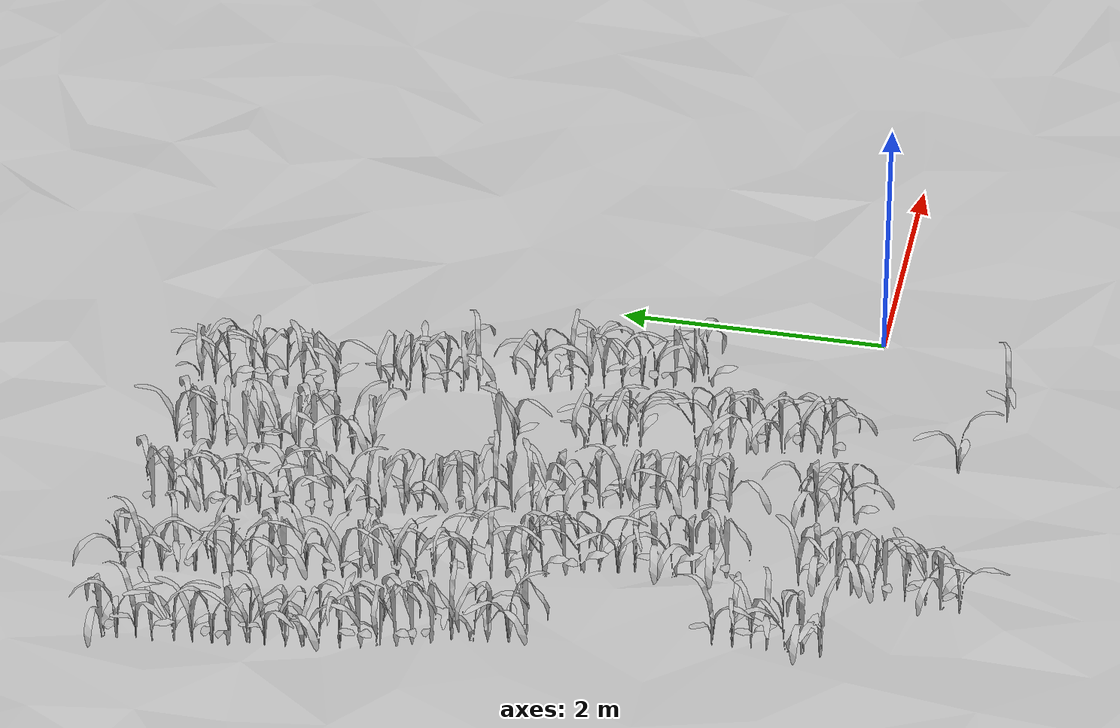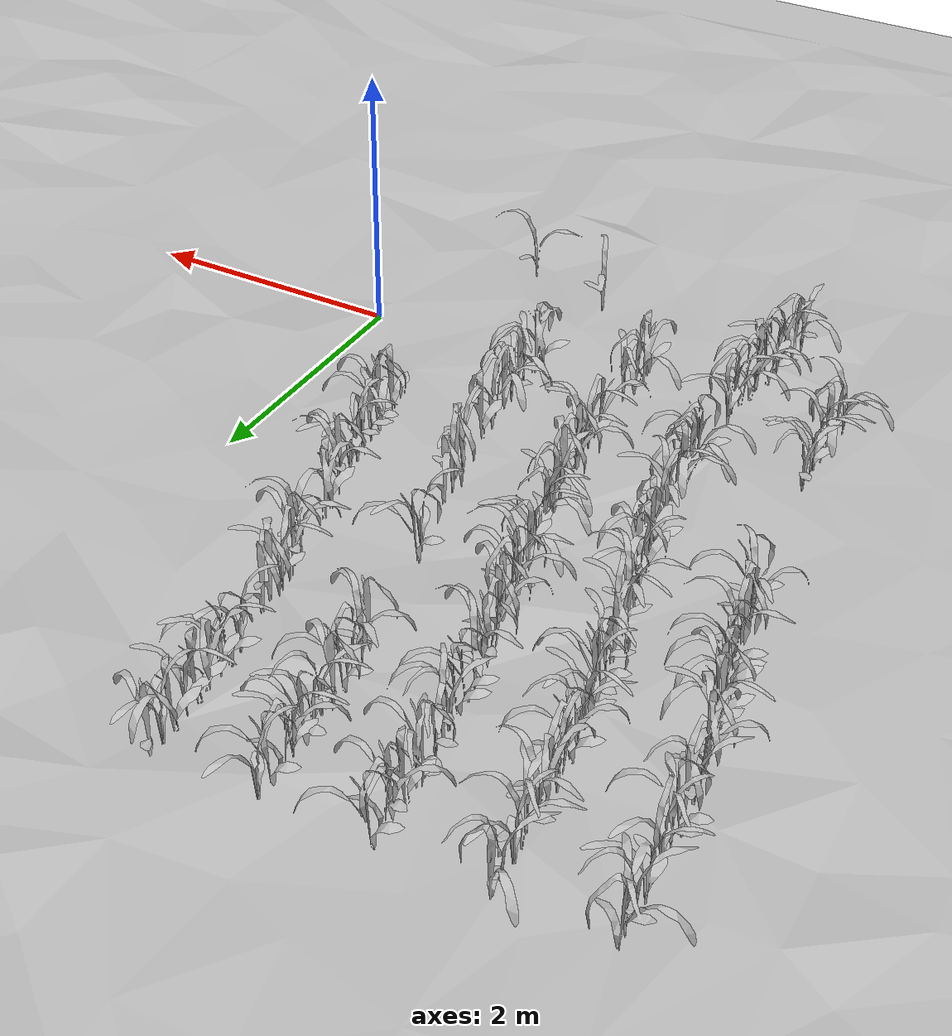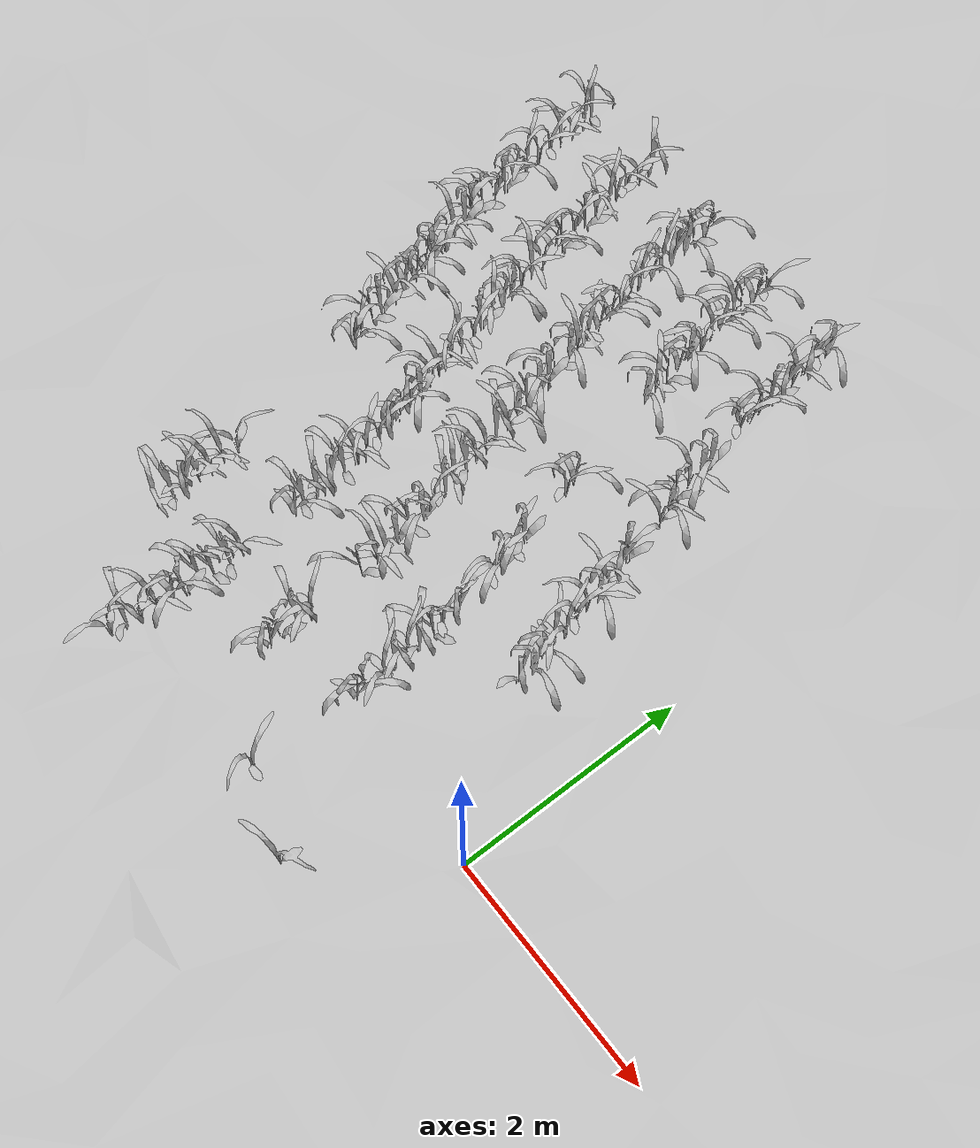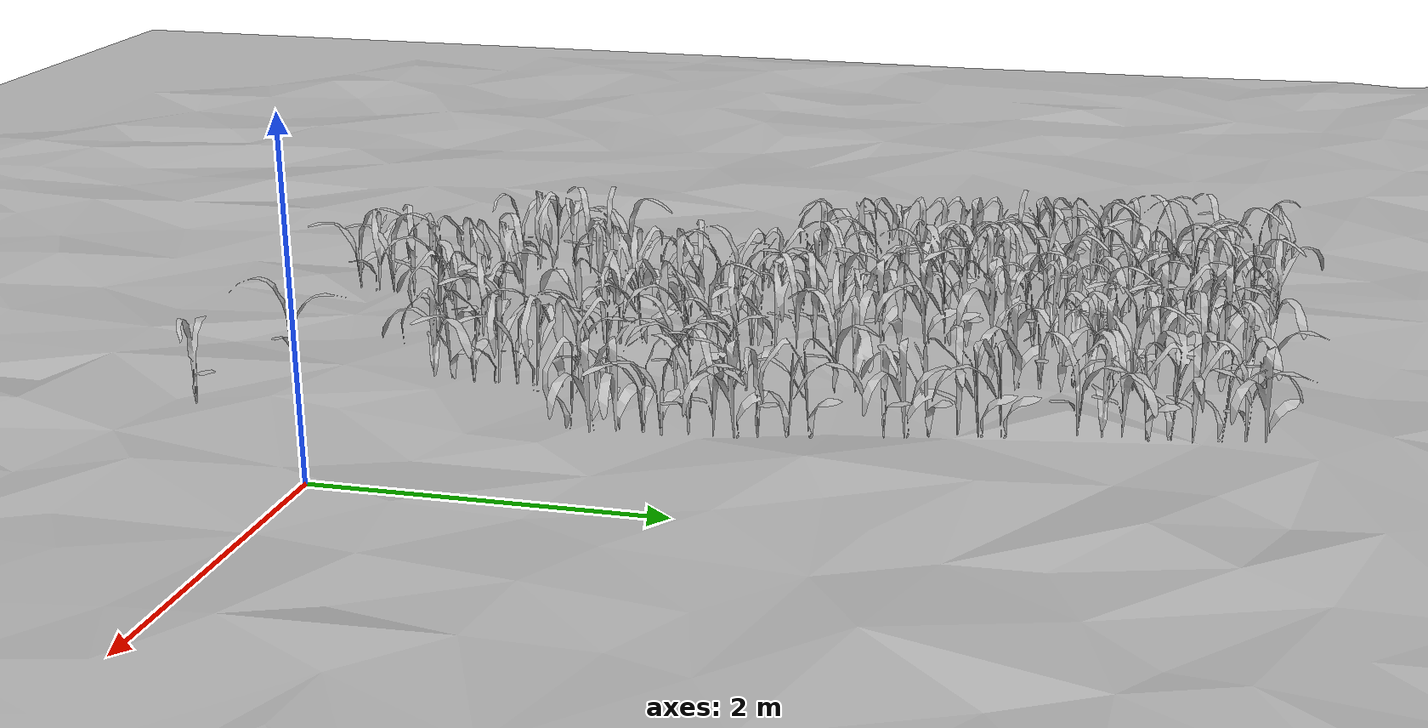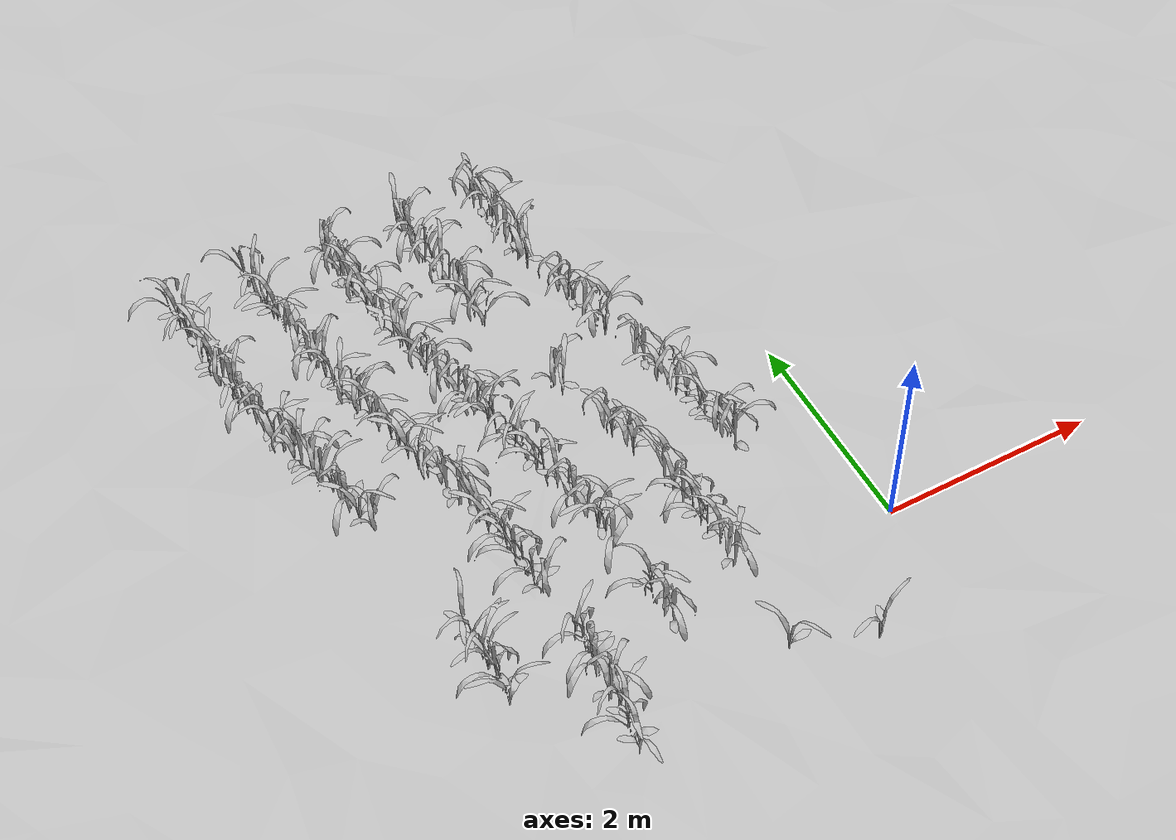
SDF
<sdf version="1.7">
 <world name="default">
  <model name="ground_plane">
   <static>1</static>
   <link name="link">
    <collision name="collision">
     <geometry><plane><normal>0 0 1</normal><size>100 100</size></plane></geometry>
     <surface>
      <contact><collide_bitmask>65535</collide_bitmask></contact>
      <friction><ode><mu>100</mu><mu2>50</mu2></ode></friction>
     </surface>
    </collision>
    <visual name="visual">
     <cast_shadows>0</cast_shadows>
     <geometry><plane><normal>0 0 1</normal><size>100 100</size></plane></geometry>
     <material>
      <script><uri>file://media/materials/scripts/gazebo.material</uri><name>Gazebo/Grey</name></script>
     </material>
    </visual>
   </link>
  </model>
  <model name="custom_terrain">
   <static>1</static>
   <link name="link">
    <collision name="collision">
     <geometry><mesh><uri>model://custom_terrain/meshes/terrain.stl</uri></mesh></geometry>
    </collision>
    <visual name="visual">
     <geometry><mesh><uri>model://custom_terrain/meshes/terrain.stl</uri></mesh></geometry>
     <material>
      <script>
       <uri>model://custom_terrain/materials/scripts</uri>
       <uri>model://custom_terrain/materials/textures</uri>
       <name>custom_terrain/terrain</name>
      </script>
     </material>
    </visual>
   </link>
   <pose>-1.53507 2.74629 0 0 -0 0</pose>
  </model>
  <include>
   <uri>model://maize_02</uri>
   <pose>-3.7567924410672364 -0.1360610948359063 0.0 0.0 0.0 5.036925746394316</pose>
   <name>maize_02_0026</name>
   <static>true</static>
  </include>
  <include>
   <uri>model://maize_01</uri>
   <pose>-3.7405225793795362 0.0021068335730533303 0.0 0.0 0.0 3.9331583203356963</pose>
   <name>maize_01_0027</name>
   <static>true</static>
  </include>
  <include>
   <uri>model://maize_01</uri>
   <pose>-3.734272335417399 0.11505640092894312 0.0 0.0 0.0 2.792430456240916</pose>
   <name>maize_01_0028</name>
   <static>true</static>
  </include>
  <include>
   <uri>model://maize_02</uri>
   <pose>-3.7499746450431752 0.2511029943738589 0.0 0.0 0.0 5.494040579656882</pose>
   <name>maize_02_0029</name>
   <static>true</static>
  </include>
  <include>
   <uri>model://maize_02</uri>
   <pose>-3.74065491064694 0.361452030578065 0.0 0.0 0.0 2.830029925927139</pose>
   <name>maize_02_0030</name>
   <static>true</static>
  </include>
  <include>
   <uri>model://maize_02</uri>
   <pose>-3.76301845584317 0.492875207533453 0.0 0.0 0.0 2.2645407160759623</pose>
   <name>maize_02_0031</name>
   <static>true</static>
  </include>
  <include>
   <uri>model://maize_02</uri>
   <pose>-3.7751229652743112 0.6411643814478026 0.0 0.0 0.0 0.22143477009293225</pose>
   <name>maize_02_0032</name>
   <static>true</static>
  </include>
  <include>
   <uri>model://maize_01</uri>
   <pose>-3.9689191932620034 1.948793514154321 0.0 0.0 0.0 1.3110168050859692</pose>
   <name>maize_01_0033</name>
   <static>true</static>
  </include>
  <include>
   <uri>model://maize_02</uri>
   <pose>-4.031450635249578 2.0651638195042916 0.0 0.0 0.0 4.447643577574803</pose>
   <name>maize_02_0034</name>
   <static>true</static>
  </include>
  <include>
   <uri>model://maize_01</uri>
   <pose>-4.0657125648753185 2.2131037308992263 0.0 0.0 0.0 4.838461899881053</pose>
   <name>maize_01_0035</name>
   <static>true</static>
  </include>
  <include>
   <uri>model://maize_01</uri>
   <pose>-4.087466114800542 2.3178041021859657 0.0 0.0 0.0 5.884264843366015</pose>
   <name>maize_01_0036</name>
   <static>true</static>
  </include>
  <include>
   <uri>model://maize_02</uri>
   <pose>-4.097641832399591 2.4675763133303596 0.0 0.0 0.0 5.382963341448509</pose>
   <name>maize_02_0037</name>
   <static>true</static>
  </include>
  <include>
   <uri>model://maize_01</uri>
   <pose>-4.144928749687069 2.5944795658852375 0.0 0.0 0.0 1.2183981037458342</pose>
   <name>maize_01_0038</name>
   <static>true</static>
  </include>
  <include>
   <uri>model://maize_01</uri>
   <pose>-4.177460835608233 2.7311171453789087 0.0 0.0 0.0 1.5094114498369817</pose>
   <name>maize_01_0039</name>
   <static>true</static>
  </include>
  <include>
   <uri>model://maize_01</uri>
   <pose>-4.214135521841443 2.842870683567155 0.0 0.0 0.0 1.8825813434135141</pose>
   <name>maize_01_0040</name>
   <static>true</static>
  </include>
  <include>
   <uri>model://maize_01</uri>
   <pose>-4.238701169505013 2.962295858000967 0.0 0.0 0.0 0.10517859354702118</pose>
   <name>maize_01_0041</name>
   <static>true</static>
  </include>
  <include>
   <uri>model://maize_01</uri>
   <pose>-4.2667152205244845 3.0916422492018527 0.0 0.0 0.0 1.8219417054282723</pose>
   <name>maize_01_0042</name>
   <static>true</static>
  </include>
  <include>
   <uri>model://maize_02</uri>
   <pose>-4.305227859399909 3.2338050200868076 0.0 0.0 0.0 2.085394830851667</pose>
   <name>maize_02_0043</name>
   <static>true</static>
  </include>
  <include>
   <uri>model://maize_01</uri>
   <pose>-4.344530673343572 3.387040852261395 0.0 0.0 0.0 6.0183641944824</pose>
   <name>maize_01_0044</name>
   <static>true</static>
  </include>
  <include>
   <uri>model://maize_01</uri>
   <pose>-4.366849776595926 3.489345505076495 0.0 0.0 0.0 5.494714545619155</pose>
   <name>maize_01_0045</name>
   <static>true</static>
  </include>
  <include>
   <uri>model://maize_01</uri>
   <pose>-4.388871433206439 3.6170380294359696 0.0 0.0 0.0 4.744487114132191</pose>
   <name>maize_01_0046</name>
   <static>true</static>
  </include>
  <include>
   <uri>model://maize_02</uri>
   <pose>-4.420353506975653 3.759798702129333 0.0 0.0 0.0 6.216815171311874</pose>
   <name>maize_02_0047</name>
   <static>true</static>
  </include>
  <include>
   <uri>model://maize_01</uri>
   <pose>-4.417220022422768 3.8744642306572232 0.0 0.0 0.0 5.586565114657938</pose>
   <name>maize_01_0048</name>
   <static>true</static>
  </include>
  <include>
   <uri>model://maize_01</uri>
   <pose>-4.451056796519463 4.006122477797791 0.0 0.0 0.0 1.0842739824286645</pose>
   <name>maize_01_0049</name>
   <static>true</static>
  </include>
  <include>
   <uri>model://maize_02</uri>
   <pose>-4.460042847095113 4.133810177064627 0.0 0.0 0.0 1.1842065806169186</pose>
   <name>maize_02_0050</name>
   <static>true</static>
  </include>
  <include>
   <uri>model://maize_02</uri>
   <pose>-4.466753579862388 4.275343426863375 0.0 0.0 0.0 3.236226772308393</pose>
   <name>maize_02_0051</name>
   <static>true</static>
  </include>
  <include>
   <uri>model://maize_02</uri>
   <pose>-4.479235922992863 4.408182305770899 0.0 0.0 0.0 3.8772745379880775</pose>
   <name>maize_02_0052</name>
   <static>true</static>
  </include>
  <include>
   <uri>model://maize_02</uri>
   <pose>-4.510687752517814 4.557649813521857 0.0 0.0 0.0 2.6763407708204254</pose>
   <name>maize_02_0053</name>
   <static>true</static>
  </include>
  <include>
   <uri>model://maize_02</uri>
   <pose>-4.50436325396495 4.682885742345909 0.0 0.0 0.0 6.198014532117304</pose>
   <name>maize_02_0054</name>
   <static>true</static>
  </include>
  <include>
   <uri>model://maize_02</uri>
   <pose>-4.522193680693597 4.818780638659395 0.0 0.0 0.0 1.1396226375032006</pose>
   <name>maize_02_0055</name>
   <static>true</static>
  </include>
  <include>
   <uri>model://maize_01</uri>
   <pose>-4.533056927243937 4.925004162875749 0.0 0.0 0.0 3.9665080409533644</pose>
   <name>maize_01_0056</name>
   <static>true</static>
  </include>
  <include>
   <uri>model://maize_02</uri>
   <pose>-3.0718790728734855 -1.033231703678202 0.0 0.0 0.0 0.6249073387797515</pose>
   <name>maize_02_0078</name>
   <static>true</static>
  </include>
  <include>
   <uri>model://maize_01</uri>
   <pose>-3.0536317117254725 -0.8957734762291402 0.0 0.0 0.0 3.648441963719134</pose>
   <name>maize_01_0079</name>
   <static>true</static>
  </include>
  <include>
   <uri>model://maize_02</uri>
   <pose>-3.0348270367076 -0.7821353767993123 0.0 0.0 0.0 0.42666549074483606</pose>
   <name>maize_02_0080</name>
   <static>true</static>
  </include>
  <include>
   <uri>model://maize_02</uri>
   <pose>-3.0224094257321226 -0.6330851898078368 0.0 0.0 0.0 2.6113007726130966</pose>
   <name>maize_02_0081</name>
   <static>true</static>
  </include>
  <include>
   <uri>model://maize_01</uri>
   <pose>-3.024084506638562 -0.48989339624768063 0.0 0.0 0.0 1.5290567222941744</pose>
   <name>maize_01_0082</name>
   <static>true</static>
  </include>
  <include>
   <uri>model://maize_01</uri>
   <pose>-2.994886832848067 -0.38719770773067036 0.0 0.0 0.0 5.9430871050403695</pose>
   <name>maize_01_0083</name>
   <static>true</static>
  </include>
  <include>
   <uri>model://maize_01</uri>
   <pose>-3.013838466968825 -0.23557274212214127 0.0 0.0 0.0 4.419042431214151</pose>
   <name>maize_01_0084</name>
   <static>true</static>
  </include>
  <include>
   <uri>model://maize_01</uri>
   <pose>-2.981568123969192 -0.12737880549168365 0.0 0.0 0.0 4.4753551170809125</pose>
   <name>maize_01_0085</name>
   <static>true</static>
  </include>
  <include>
   <uri>model://maize_01</uri>
   <pose>-2.9710629386135223 0.019351059639178964 0.0 0.0 0.0 3.9863461265525717</pose>
   <name>maize_01_0086</name>
   <static>true</static>
  </include>
  <include>
   <uri>model://maize_02</uri>
   <pose>-2.9996085955828113 0.1464082797857659 0.0 0.0 0.0 2.849834768503737</pose>
   <name>maize_02_0087</name>
   <static>true</static>
  </include>
  <include>
   <uri>model://maize_01</uri>
   <pose>-3.0261811449201876 0.6642322893514262 0.0 0.0 0.0 1.3881778348496736</pose>
   <name>maize_01_0088</name>
   <static>true</static>
  </include>
  <include>
   <uri>model://maize_01</uri>
   <pose>-3.0371884321886378 0.7733594646617933 0.0 0.0 0.0 4.0424782636655285</pose>
   <name>maize_01_0089</name>
   <static>true</static>
  </include>
  <include>
   <uri>model://maize_01</uri>
   <pose>-3.05432210757261 0.9101348680726234 0.0 0.0 0.0 3.445502645987872</pose>
   <name>maize_01_0090</name>
   <static>true</static>
  </include>
  <include>
   <uri>model://maize_01</uri>
   <pose>-3.0705523002443202 1.0473143554031592 0.0 0.0 0.0 2.7703708533460842</pose>
   <name>maize_01_0091</name>
   <static>true</static>
  </include>
  <include>
   <uri>model://maize_01</uri>
   <pose>-3.0711933374662315 1.1934999896151266 0.0 0.0 0.0 4.110926144548465</pose>
   <name>maize_01_0092</name>
   <static>true</static>
  </include>
  <include>
   <uri>model://maize_02</uri>
   <pose>-3.0862499373606327 1.3263133724751606 0.0 0.0 0.0 2.3911897011762955</pose>
   <name>maize_02_0093</name>
   <static>true</static>
  </include>
  <include>
   <uri>model://maize_02</uri>
   <pose>-3.1288204133953568 1.4446336205053159 0.0 0.0 0.0 4.400658938925321</pose>
   <name>maize_02_0094</name>
   <static>true</static>
  </include>
  <include>
   <uri>model://maize_02</uri>
   <pose>-3.1420741657708287 1.5787511160042536 0.0 0.0 0.0 3.7077270755821874</pose>
   <name>maize_02_0095</name>
   <static>true</static>
  </include>
  <include>
   <uri>model://maize_01</uri>
   <pose>-3.1597696918127736 1.7068728021417818 0.0 0.0 0.0 2.5937472046693437</pose>
   <name>maize_01_0096</name>
   <static>true</static>
  </include>
  <include>
   <uri>model://maize_01</uri>
   <pose>-3.202109589585293 1.8164297705227106 0.0 0.0 0.0 1.838467191852863</pose>
   <name>maize_01_0097</name>
   <static>true</static>
  </include>
  <include>
   <uri>model://maize_01</uri>
   <pose>-3.250564563037315 1.9677689259349804 0.0 0.0 0.0 2.47377412662088</pose>
   <name>maize_01_0098</name>
   <static>true</static>
  </include>
  <include>
   <uri>model://maize_01</uri>
   <pose>-3.2505248567509333 2.0818503245263273 0.0 0.0 0.0 0.09618585063170325</pose>
   <name>maize_01_0099</name>
   <static>true</static>
  </include>
  <include>
   <uri>model://maize_02</uri>
   <pose>-3.311320252760163 2.222053166512587 0.0 0.0 0.0 3.1503482342884843</pose>
   <name>maize_02_0100</name>
   <static>true</static>
  </include>
  <include>
   <uri>model://maize_02</uri>
   <pose>-3.3455387311751723 2.33875645752267 0.0 0.0 0.0 5.493925361110404</pose>
   <name>maize_02_0101</name>
   <static>true</static>
  </include>
  <include>
   <uri>model://maize_02</uri>
   <pose>-3.373443407897215 2.4850870025388763 0.0 0.0 0.0 4.459080445184253</pose>
   <name>maize_02_0102</name>
   <static>true</static>
  </include>
  <include>
   <uri>model://maize_02</uri>
   <pose>-3.4020829159069144 2.60907584960287 0.0 0.0 0.0 1.9041805591562022</pose>
   <name>maize_02_0103</name>
   <static>true</static>
  </include>
  <include>
   <uri>model://maize_02</uri>
   <pose>-3.4080753072903964 2.744225473099139 0.0 0.0 0.0 4.029500313278586</pose>
   <name>maize_02_0104</name>
   <static>true</static>
  </include>
  <include>
   <uri>model://maize_01</uri>
   <pose>-3.472036195358663 2.877209971554406 0.0 0.0 0.0 5.685823113919718</pose>
   <name>maize_01_0105</name>
   <static>true</static>
  </include>
  <include>
   <uri>model://maize_02</uri>
   <pose>-3.4802362533104643 2.996608013007249 0.0 0.0 0.0 1.4693867549007955</pose>
   <name>maize_02_0106</name>
   <static>true</static>
  </include>
  <include>
   <uri>model://maize_01</uri>
   <pose>-3.5246770830177954 3.1416574988210617 0.0 0.0 0.0 1.106077199107382</pose>
   <name>maize_01_0107</name>
   <static>true</static>
  </include>
  <include>
   <uri>model://maize_01</uri>
   <pose>-3.5480378051148254 3.2552095520819546 0.0 0.0 0.0 0.6801501598259474</pose>
   <name>maize_01_0108</name>
   <static>true</static>
  </include>
  <include>
   <uri>model://maize_02</uri>
   <pose>-3.5793412889202876 3.3808073159153484 0.0 0.0 0.0 3.299730085075031</pose>
   <name>maize_02_0109</name>
   <static>true</static>
  </include>
  <include>
   <uri>model://maize_02</uri>
   <pose>-3.601658985485334 3.5037771295546656 0.0 0.0 0.0 1.8323153480736474</pose>
   <name>maize_02_0110</name>
   <static>true</static>
  </include>
  <include>
   <uri>model://maize_02</uri>
   <pose>-3.620043253863376 3.641895307737052 0.0 0.0 0.0 6.1134757695386925</pose>
   <name>maize_02_0111</name>
   <static>true</static>
  </include>
  <include>
   <uri>model://maize_01</uri>
   <pose>-3.652382834531576 3.7831634632931004 0.0 0.0 0.0 1.3860472506848895</pose>
   <name>maize_01_0112</name>
   <static>true</static>
  </include>
  <include>
   <uri>model://maize_01</uri>
   <pose>-3.6573783072942274 3.8934076712966186 0.0 0.0 0.0 4.817052051880366</pose>
   <name>maize_01_0113</name>
   <static>true</static>
  </include>
  <include>
   <uri>model://maize_02</uri>
   <pose>-3.7011677537392242 4.039556377745526 0.0 0.0 0.0 3.773663482358423</pose>
   <name>maize_02_0114</name>
   <static>true</static>
  </include>
  <include>
   <uri>model://maize_01</uri>
   <pose>-3.7009828608921875 4.176478995027224 0.0 0.0 0.0 5.26341791041397</pose>
   <name>maize_01_0115</name>
   <static>true</static>
  </include>
  <include>
   <uri>model://maize_02</uri>
   <pose>-3.7151232018040177 4.297372260718565 0.0 0.0 0.0 5.0142718098022145</pose>
   <name>maize_02_0116</name>
   <static>true</static>
  </include>
  <include>
   <uri>model://maize_02</uri>
   <pose>-3.7250004530881564 4.437593134756878 0.0 0.0 0.0 1.1934816672046016</pose>
   <name>maize_02_0117</name>
   <static>true</static>
  </include>
  <include>
   <uri>model://maize_02</uri>
   <pose>-3.7595448086709533 4.561195509495907 0.0 0.0 0.0 5.629366699867866</pose>
   <name>maize_02_0118</name>
   <static>true</static>
  </include>
  <include>
   <uri>model://maize_02</uri>
   <pose>-3.7731107512393396 4.6731218323946555 0.0 0.0 0.0 3.4174531728514967</pose>
   <name>maize_02_0119</name>
   <static>true</static>
  </include>
  <include>
   <uri>model://maize_02</uri>
   <pose>-3.773024166203536 4.82076045093006 0.0 0.0 0.0 6.247157437385436</pose>
   <name>maize_02_0120</name>
   <static>true</static>
  </include>
  <include>
   <uri>model://maize_01</uri>
   <pose>-3.7871956188227074 4.961775273627061 0.0 0.0 0.0 3.188782070029957</pose>
   <name>maize_01_0121</name>
   <static>true</static>
  </include>
  <include>
   <uri>model://maize_01</uri>
   <pose>-2.2302291632875137 -0.13832161625686754 0.0 0.0 0.0 2.337094770657388</pose>
   <name>maize_01_0150</name>
   <static>true</static>
  </include>
  <include>
   <uri>model://maize_01</uri>
   <pose>-2.2541135353999584 -0.014853809076818741 0.0 0.0 0.0 5.379109958065579</pose>
   <name>maize_01_0151</name>
   <static>true</static>
  </include>
  <include>
   <uri>model://maize_01</uri>
   <pose>-2.2583686392069775 0.14126798839977242 0.0 0.0 0.0 3.6633849114147927</pose>
   <name>maize_01_0152</name>
   <static>true</static>
  </include>
  <include>
   <uri>model://maize_02</uri>
   <pose>-2.2270674451513854 0.2500697041365176 0.0 0.0 0.0 1.1902273275288704</pose>
   <name>maize_02_0153</name>
   <static>true</static>
  </include>
  <include>
   <uri>model://maize_01</uri>
   <pose>-2.290475454559198 0.7849515984680867 0.0 0.0 0.0 4.881909562250398</pose>
   <name>maize_01_0154</name>
   <static>true</static>
  </include>
  <include>
   <uri>model://maize_02</uri>
   <pose>-2.29230047765418 0.9256262260948299 0.0 0.0 0.0 2.1590666363733755</pose>
   <name>maize_02_0155</name>
   <static>true</static>
  </include>
  <include>
   <uri>model://maize_02</uri>
   <pose>-2.2981177816246876 1.0291487587400086 0.0 0.0 0.0 5.239286363766334</pose>
   <name>maize_02_0156</name>
   <static>true</static>
  </include>
  <include>
   <uri>model://maize_01</uri>
   <pose>-2.337566250429374 1.1632762274397759 0.0 0.0 0.0 6.143734565321317</pose>
   <name>maize_01_0157</name>
   <static>true</static>
  </include>
  <include>
   <uri>model://maize_01</uri>
   <pose>-2.3611219860979027 1.3062758056244295 0.0 0.0 0.0 4.513742652772392</pose>
   <name>maize_01_0158</name>
   <static>true</static>
  </include>
  <include>
   <uri>model://maize_01</uri>
   <pose>-2.3712412531342304 1.4459963286071627 0.0 0.0 0.0 6.106049167653354</pose>
   <name>maize_01_0159</name>
   <static>true</static>
  </include>
  <include>
   <uri>model://maize_02</uri>
   <pose>-2.4079225915919813 1.5607924363308772 0.0 0.0 0.0 0.4667928910219264</pose>
   <name>maize_02_0160</name>
   <static>true</static>
  </include>
  <include>
   <uri>model://maize_01</uri>
   <pose>-2.4368866840909287 1.7102883169494045 0.0 0.0 0.0 3.4316708616958134</pose>
   <name>maize_01_0161</name>
   <static>true</static>
  </include>
  <include>
   <uri>model://maize_02</uri>
   <pose>-2.4688022559657967 1.8182659456504229 0.0 0.0 0.0 1.6948108017633663</pose>
   <name>maize_02_0162</name>
   <static>true</static>
  </include>
  <include>
   <uri>model://maize_01</uri>
   <pose>-2.4935482324826124 1.9616096012134132 0.0 0.0 0.0 3.6192977413416156</pose>
   <name>maize_01_0163</name>
   <static>true</static>
  </include>
  <include>
   <uri>model://maize_02</uri>
   <pose>-2.526352660125564 2.0859980303940877 0.0 0.0 0.0 2.9050295001542175</pose>
   <name>maize_02_0164</name>
   <static>true</static>
  </include>
  <include>
   <uri>model://maize_02</uri>
   <pose>-2.5392039762775864 2.196206350099199 0.0 0.0 0.0 2.568853890869166</pose>
   <name>maize_02_0165</name>
   <static>true</static>
  </include>
  <include>
   <uri>model://maize_01</uri>
   <pose>-2.5846209641750124 2.3340659143715343 0.0 0.0 0.0 3.358889358241204</pose>
   <name>maize_01_0166</name>
   <static>true</static>
  </include>
  <include>
   <uri>model://maize_02</uri>
   <pose>-2.5964993825850358 2.4622642632426834 0.0 0.0 0.0 5.469221314277307</pose>
   <name>maize_02_0167</name>
   <static>true</static>
  </include>
  <include>
   <uri>model://maize_01</uri>
   <pose>-2.6533779041957586 2.596412975195278 0.0 0.0 0.0 0.6600414468459882</pose>
   <name>maize_01_0168</name>
   <static>true</static>
  </include>
  <include>
   <uri>model://maize_01</uri>
   <pose>-2.6567521071759965 2.7155147440977943 0.0 0.0 0.0 4.355111201377614</pose>
   <name>maize_01_0169</name>
   <static>true</static>
  </include>
  <include>
   <uri>model://maize_01</uri>
   <pose>-2.7012944885451287 2.863786175544249 0.0 0.0 0.0 0.12824750322333217</pose>
   <name>maize_01_0170</name>
   <static>true</static>
  </include>
  <include>
   <uri>model://maize_01</uri>
   <pose>-2.7307824532942084 2.9915855923468677 0.0 0.0 0.0 5.96602954005034</pose>
   <name>maize_01_0171</name>
   <static>true</static>
  </include>
  <include>
   <uri>model://maize_01</uri>
   <pose>-2.7762589439985006 3.1064378347105195 0.0 0.0 0.0 4.9865717882551985</pose>
   <name>maize_01_0172</name>
   <static>true</static>
  </include>
  <include>
   <uri>model://maize_01</uri>
   <pose>-2.8137479786723048 3.264997794835909 0.0 0.0 0.0 0.3809986412690638</pose>
   <name>maize_01_0173</name>
   <static>true</static>
  </include>
  <include>
   <uri>model://maize_02</uri>
   <pose>-2.8143363318830406 3.3661414511750913 0.0 0.0 0.0 5.078714206309337</pose>
   <name>maize_02_0174</name>
   <static>true</static>
  </include>
  <include>
   <uri>model://maize_02</uri>
   <pose>-2.8601466508544093 3.507528077594055 0.0 0.0 0.0 4.382160048586056</pose>
   <name>maize_02_0175</name>
   <static>true</static>
  </include>
  <include>
   <uri>model://maize_01</uri>
   <pose>-2.870486939558659 3.62780373007068 0.0 0.0 0.0 1.4421096290360098</pose>
   <name>maize_01_0176</name>
   <static>true</static>
  </include>
  <include>
   <uri>model://maize_01</uri>
   <pose>-2.890951903393003 3.7599187889510692 0.0 0.0 0.0 1.4531410148010528</pose>
   <name>maize_01_0177</name>
   <static>true</static>
  </include>
  <include>
   <uri>model://maize_02</uri>
   <pose>-2.9188011243124627 3.9097420170312547 0.0 0.0 0.0 0.20781174130222937</pose>
   <name>maize_02_0178</name>
   <static>true</static>
  </include>
  <include>
   <uri>model://maize_02</uri>
   <pose>-2.939965006843102 4.020145128858931 0.0 0.0 0.0 4.236596278926534</pose>
   <name>maize_02_0179</name>
   <static>true</static>
  </include>
  <include>
   <uri>model://maize_02</uri>
   <pose>-2.9693172426772674 4.145836723261062 0.0 0.0 0.0 0.9495565318270985</pose>
   <name>maize_02_0180</name>
   <static>true</static>
  </include>
  <include>
   <uri>model://maize_01</uri>
   <pose>-2.9776595710291693 4.289104569086377 0.0 0.0 0.0 0.6857620629625939</pose>
   <name>maize_01_0181</name>
   <static>true</static>
  </include>
  <include>
   <uri>model://maize_02</uri>
   <pose>-2.9977552167194017 4.403148905766394 0.0 0.0 0.0 1.015190737937243</pose>
   <name>maize_02_0182</name>
   <static>true</static>
  </include>
  <include>
   <uri>model://maize_01</uri>
   <pose>-3.0048422660787235 4.541370767651469 0.0 0.0 0.0 2.305504585612262</pose>
   <name>maize_01_0183</name>
   <static>true</static>
  </include>
  <include>
   <uri>model://maize_01</uri>
   <pose>-3.000812149281731 4.673700805948136 0.0 0.0 0.0 0.6073194404890306</pose>
   <name>maize_01_0184</name>
   <static>true</static>
  </include>
  <include>
   <uri>model://maize_01</uri>
   <pose>-3.0148114984510284 4.7930928511033875 0.0 0.0 0.0 4.680774044813913</pose>
   <name>maize_01_0185</name>
   <static>true</static>
  </include>
  <include>
   <uri>model://maize_01</uri>
   <pose>-3.0227386960633917 4.9221860666764305 0.0 0.0 0.0 1.2800487368408295</pose>
   <name>maize_01_0186</name>
   <static>true</static>
  </include>
  <include>
   <uri>model://maize_02</uri>
   <pose>-1.5244492873258733 -0.7906483404551213 0.0 0.0 0.0 4.180021682713142</pose>
   <name>maize_02_0214</name>
   <static>true</static>
  </include>
  <include>
   <uri>model://maize_01</uri>
   <pose>-1.4885358849442512 0.12864330546707206 0.0 0.0 0.0 1.7028094449955622</pose>
   <name>maize_01_0215</name>
   <static>true</static>
  </include>
  <include>
   <uri>model://maize_01</uri>
   <pose>-1.4973639251423057 0.2419794728575703 0.0 0.0 0.0 5.5431062467883</pose>
   <name>maize_01_0216</name>
   <static>true</static>
  </include>
  <include>
   <uri>model://maize_02</uri>
   <pose>-1.4794125695272282 0.38357676158187076 0.0 0.0 0.0 1.171195281373217</pose>
   <name>maize_02_0217</name>
   <static>true</static>
  </include>
  <include>
   <uri>model://maize_01</uri>
   <pose>-1.5102029644961819 0.521654645722689 0.0 0.0 0.0 3.402166298758675</pose>
   <name>maize_01_0218</name>
   <static>true</static>
  </include>
  <include>
   <uri>model://maize_02</uri>
   <pose>-1.5213378863763827 0.636003326041522 0.0 0.0 0.0 1.0952494514069777</pose>
   <name>maize_02_0219</name>
   <static>true</static>
  </include>
  <include>
   <uri>model://maize_01</uri>
   <pose>-1.5187020780578215 0.7537620285518326 0.0 0.0 0.0 3.202952114965301</pose>
   <name>maize_01_0220</name>
   <static>true</static>
  </include>
  <include>
   <uri>model://maize_01</uri>
   <pose>-1.5322480383364303 0.9114001017690555 0.0 0.0 0.0 4.569370247209279</pose>
   <name>maize_01_0221</name>
   <static>true</static>
  </include>
  <include>
   <uri>model://maize_02</uri>
   <pose>-1.5689064756167788 1.0110348551511465 0.0 0.0 0.0 3.810296332826147</pose>
   <name>maize_02_0222</name>
   <static>true</static>
  </include>
  <include>
   <uri>model://maize_01</uri>
   <pose>-1.5687668634522909 1.158212623472443 0.0 0.0 0.0 2.5393894483139454</pose>
   <name>maize_01_0223</name>
   <static>true</static>
  </include>
  <include>
   <uri>model://maize_02</uri>
   <pose>-1.650661460223218 1.56262488282079 0.0 0.0 0.0 3.8033417083004966</pose>
   <name>maize_02_0224</name>
   <static>true</static>
  </include>
  <include>
   <uri>model://maize_01</uri>
   <pose>-1.6612850336668419 1.66898590856975 0.0 0.0 0.0 6.008070826706409</pose>
   <name>maize_01_0225</name>
   <static>true</static>
  </include>
  <include>
   <uri>model://maize_02</uri>
   <pose>-1.7187902598487879 1.82185820303264 0.0 0.0 0.0 4.146441772388246</pose>
   <name>maize_02_0226</name>
   <static>true</static>
  </include>
  <include>
   <uri>model://maize_01</uri>
   <pose>-1.7367353410759405 1.9499096144252774 0.0 0.0 0.0 5.954599794172354</pose>
   <name>maize_01_0227</name>
   <static>true</static>
  </include>
  <include>
   <uri>model://maize_02</uri>
   <pose>-1.8604193834210572 2.466909088709366 0.0 0.0 0.0 3.1972905502350533</pose>
   <name>maize_02_0228</name>
   <static>true</static>
  </include>
  <include>
   <uri>model://maize_01</uri>
   <pose>-1.9005661284710291 2.577295075752527 0.0 0.0 0.0 1.1821471830007448</pose>
   <name>maize_01_0229</name>
   <static>true</static>
  </include>
  <include>
   <uri>model://maize_01</uri>
   <pose>-2.114923843770482 3.4919773167845 0.0 0.0 0.0 0.35188082608442833</pose>
   <name>maize_01_0230</name>
   <static>true</static>
  </include>
  <include>
   <uri>model://maize_02</uri>
   <pose>-2.140187675392786 3.6323801856965194 0.0 0.0 0.0 4.618794551754657</pose>
   <name>maize_02_0231</name>
   <static>true</static>
  </include>
  <include>
   <uri>model://maize_01</uri>
   <pose>-2.1369020048663003 3.7594731203603247 0.0 0.0 0.0 4.7128052461051855</pose>
   <name>maize_01_0232</name>
   <static>true</static>
  </include>
  <include>
   <uri>model://maize_01</uri>
   <pose>-2.183284679440862 3.9024190530648313 0.0 0.0 0.0 1.2820674539784844</pose>
   <name>maize_01_0233</name>
   <static>true</static>
  </include>
  <include>
   <uri>model://maize_01</uri>
   <pose>-2.2012212885170173 4.033090515426053 0.0 0.0 0.0 0.14380950445378887</pose>
   <name>maize_01_0234</name>
   <static>true</static>
  </include>
  <include>
   <uri>model://maize_02</uri>
   <pose>-2.1972346233011657 4.164610148655183 0.0 0.0 0.0 0.1470601711023119</pose>
   <name>maize_02_0235</name>
   <static>true</static>
  </include>
  <include>
   <uri>model://maize_02</uri>
   <pose>-2.22477307481579 4.292584187658565 0.0 0.0 0.0 2.604491065776068</pose>
   <name>maize_02_0236</name>
   <static>true</static>
  </include>
  <include>
   <uri>model://maize_01</uri>
   <pose>-2.2545330966364006 4.41639074101819 0.0 0.0 0.0 0.8622272311631544</pose>
   <name>maize_01_0237</name>
   <static>true</static>
  </include>
  <include>
   <uri>model://maize_02</uri>
   <pose>-2.258527799583007 4.5531434993620765 0.0 0.0 0.0 2.397944406262084</pose>
   <name>maize_02_0238</name>
   <static>true</static>
  </include>
  <include>
   <uri>model://maize_01</uri>
   <pose>-2.2651891808812157 4.6673381232839874 0.0 0.0 0.0 4.808869675179044</pose>
   <name>maize_01_0239</name>
   <static>true</static>
  </include>
  <include>
   <uri>model://maize_01</uri>
   <pose>-2.27538539867051 4.797597634881925 0.0 0.0 0.0 1.2437042946459322</pose>
   <name>maize_01_0240</name>
   <static>true</static>
  </include>
  <include>
   <uri>model://maize_02</uri>
   <pose>-2.275514033062849 4.935618415731935 0.0 0.0 0.0 3.4395818065734227</pose>
   <name>maize_02_0241</name>
   <static>true</static>
  </include>
  <include>
   <uri>model://maize_02</uri>
   <pose>-0.8125571342856713 -1.050184807649966 0.0 0.0 0.0 5.585938033675848</pose>
   <name>maize_02_0269</name>
   <static>true</static>
  </include>
  <include>
   <uri>model://maize_01</uri>
   <pose>-0.8463919487279495 1.1823638723261485 0.0 0.0 0.0 2.748793804571916</pose>
   <name>maize_01_0286</name>
   <static>true</static>
  </include>
  <include>
   <uri>model://maize_01</uri>
   <pose>-0.8336928934296205 1.3060773183321632 0.0 0.0 0.0 0.5738051672489871</pose>
   <name>maize_01_0287</name>
   <static>true</static>
  </include>
  <include>
   <uri>model://maize_01</uri>
   <pose>-0.892084274043026 1.4374804216817079 0.0 0.0 0.0 0.9414127362828131</pose>
   <name>maize_01_0288</name>
   <static>true</static>
  </include>
  <include>
   <uri>model://maize_02</uri>
   <pose>-0.9207008685486405 1.5829242443774045 0.0 0.0 0.0 1.3429713187881265</pose>
   <name>maize_02_0289</name>
   <static>true</static>
  </include>
  <include>
   <uri>model://maize_02</uri>
   <pose>-0.9161891446615517 1.6884622892795933 0.0 0.0 0.0 0.928993798344099</pose>
   <name>maize_02_0290</name>
   <static>true</static>
  </include>
  <include>
   <uri>model://maize_02</uri>
   <pose>-0.9629358460481455 1.830945101702359 0.0 0.0 0.0 3.636421729902828</pose>
   <name>maize_02_0291</name>
   <static>true</static>
  </include>
  <include>
   <uri>model://maize_02</uri>
   <pose>-0.9891488639571192 1.9629451099425166 0.0 0.0 0.0 2.9464090546428934</pose>
   <name>maize_02_0292</name>
   <static>true</static>
  </include>
  <include>
   <uri>model://maize_01</uri>
   <pose>-0.9954639172041636 2.0835196506932383 0.0 0.0 0.0 0.32834163640574104</pose>
   <name>maize_01_0293</name>
   <static>true</static>
  </include>
  <include>
   <uri>model://maize_02</uri>
   <pose>-1.0525710194886229 2.2023397441151347 0.0 0.0 0.0 5.30549237113904</pose>
   <name>maize_02_0294</name>
   <static>true</static>
  </include>
  <include>
   <uri>model://maize_01</uri>
   <pose>-1.0867675787159217 2.3636272971472114 0.0 0.0 0.0 2.407874297101343</pose>
   <name>maize_01_0295</name>
   <static>true</static>
  </include>
  <include>
   <uri>model://maize_01</uri>
   <pose>-1.1217625916697342 2.4789362619155786 0.0 0.0 0.0 5.584219032737784</pose>
   <name>maize_01_0296</name>
   <static>true</static>
  </include>
  <include>
   <uri>model://maize_02</uri>
   <pose>-1.1995368226218985 2.881286207786712 0.0 0.0 0.0 5.599164791191594</pose>
   <name>maize_02_0297</name>
   <static>true</static>
  </include>
  <include>
   <uri>model://maize_01</uri>
   <pose>-1.2269229761674227 2.991375440794591 0.0 0.0 0.0 0.39328890868634564</pose>
   <name>maize_01_0298</name>
   <static>true</static>
  </include>
  <include>
   <uri>model://maize_01</uri>
   <pose>-1.281075187641725 3.112818725975235 0.0 0.0 0.0 5.186016086461158</pose>
   <name>maize_01_0299</name>
   <static>true</static>
  </include>
  <include>
   <uri>model://maize_02</uri>
   <pose>-1.3160450942947535 3.2718761877809137 0.0 0.0 0.0 2.379635759311609</pose>
   <name>maize_02_0300</name>
   <static>true</static>
  </include>
  <include>
   <uri>model://maize_01</uri>
   <pose>-1.3112440859113599 3.3906659307936846 0.0 0.0 0.0 6.136200449577156</pose>
   <name>maize_01_0301</name>
   <static>true</static>
  </include>
  <include>
   <uri>model://maize_01</uri>
   <pose>-1.3371398254269924 3.5173362634777914 0.0 0.0 0.0 6.010727036220979</pose>
   <name>maize_01_0302</name>
   <static>true</static>
  </include>
  <include>
   <uri>model://maize_02</uri>
   <pose>-1.4437098674113311 3.9173697563573584 0.0 0.0 0.0 3.3754970686469243</pose>
   <name>maize_02_0303</name>
   <static>true</static>
  </include>
  <include>
   <uri>model://maize_01</uri>
   <pose>-1.4558787399991153 4.049071399596946 0.0 0.0 0.0 1.582854344936114</pose>
   <name>maize_01_0304</name>
   <static>true</static>
  </include>
  <include>
   <uri>model://maize_02</uri>
   <pose>-1.4687651490199969 4.157604483581266 0.0 0.0 0.0 2.6795607942889084</pose>
   <name>maize_02_0305</name>
   <static>true</static>
  </include>
  <include>
   <uri>model://maize_01</uri>
   <pose>-1.4771917588054413 4.293048518509539 0.0 0.0 0.0 5.400422662992441</pose>
   <name>maize_01_0306</name>
   <static>true</static>
  </include>
  <include>
   <uri>model://maize_01</uri>
   <pose>-1.4886566168143667 4.42109520977199 0.0 0.0 0.0 2.2887769541088976</pose>
   <name>maize_01_0307</name>
   <static>true</static>
  </include>
  <include>
   <uri>model://maize_02</uri>
   <pose>-1.4943331154157578 4.540582839671889 0.0 0.0 0.0 2.2828681081320927</pose>
   <name>maize_02_0308</name>
   <static>true</static>
  </include>
  <include>
   <uri>model://maize_01</uri>
   <pose>-1.5148342407079995 4.693427824655729 0.0 0.0 0.0 2.4276752125786007</pose>
   <name>maize_01_0309</name>
   <static>true</static>
  </include>
  <include>
   <uri>model://maize_02</uri>
   <pose>-1.5300084602462307 4.824807317881331 0.0 0.0 0.0 3.568689573897806</pose>
   <name>maize_02_0310</name>
   <static>true</static>
  </include>
  <include>
   <uri>model://maize_01</uri>
   <pose>-1.52946577181682 4.933580621714959 0.0 0.0 0.0 0.31105348081963224</pose>
   <name>maize_01_0311</name>
   <static>true</static>
  </include>
 </world>
</sdf>
